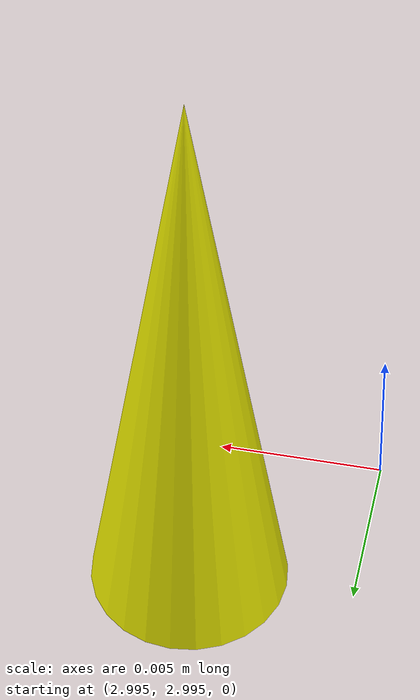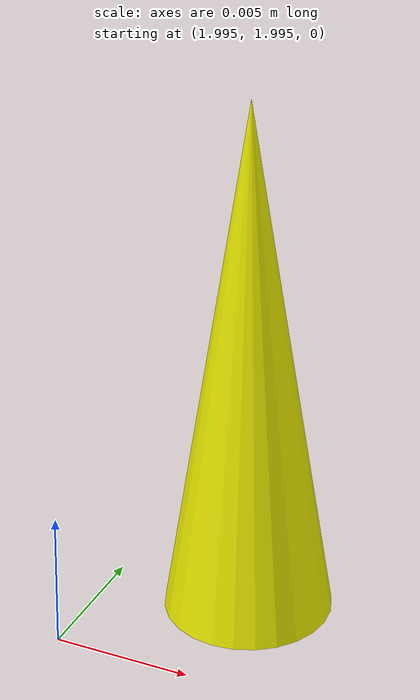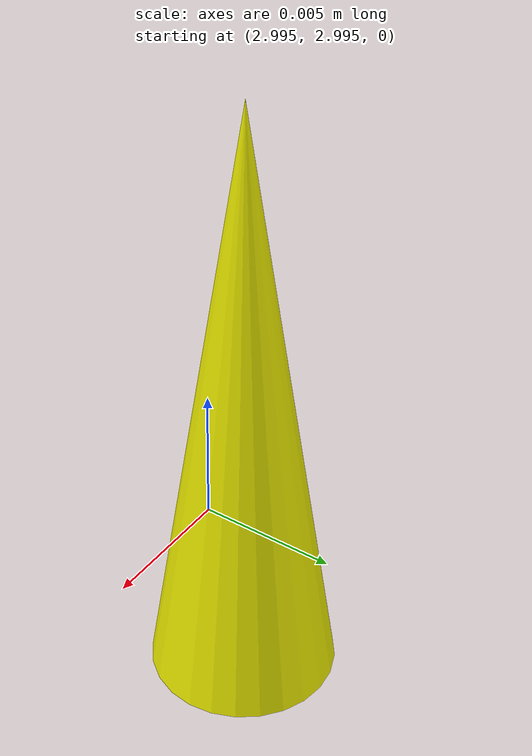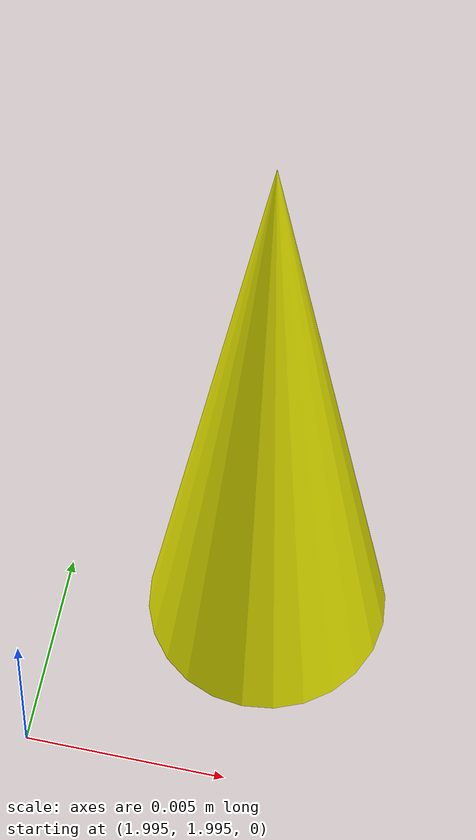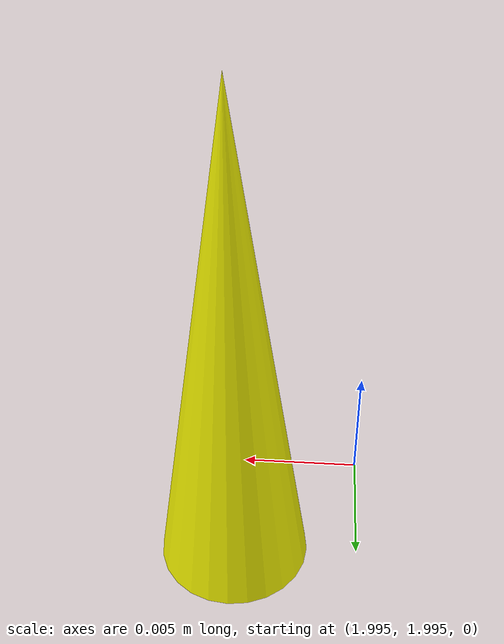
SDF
<?xml version="1.0"?>

<sdf version='1.6'>
	<world name='default'>
	<gravity>0 0 -9.8</gravity>
		<model name='cones'>
            <pose>3 3 0.0 0 0 0</pose>
			<link name='cone_0_link'>
				<collision name='cone_0_collision'>
				<geometry>
					<mesh>
					<uri>models/cone/meshes/cone.stl</uri>
					<scale>0.001 0.001 0.001</scale>
					</mesh>
				</geometry>
				</collision>
				<visual name='cone_0_visual'>
				<geometry>
					<mesh>
					<uri>models/cone/meshes/cone.stl</uri>
					<scale>0.001 0.001 0.001</scale>
					</mesh>
				</geometry>
				<material>
					<ambient>1 1 0 1</ambient>
					<diffuse>1 1 0 1</diffuse>
					<specular>1 1 0 1</specular>
				</material>
				</visual>
				<enable_wind>false</enable_wind>
			</link>
			<static>true</static>
      		<self_collide>false</self_collide>
			</model>
			<model name='cones_1'>
            <pose>2 2 0 0 0.0 0</pose>
			<link name='cone_1_link'>
				<collision name='cone_1_collision'>
				<geometry>
					<mesh>
					<uri>models/cone/meshes/cone.stl</uri>
					<scale>0.001 0.001 0.001</scale>
					</mesh>
				</geometry>
				</collision>
				<visual name='cone_1_visual'>
				<geometry>
					<mesh>
					<uri>models/cone/meshes/cone.stl</uri>
					<scale>0.001 0.001 0.001</scale>
					</mesh>
				</geometry>
				<material>
					<ambient>1 1 0 1</ambient>
					<diffuse>1 1 0 1</diffuse>
					<specular>1 1 0 1</specular>
				</material>
				</visual>
				<enable_wind>false</enable_wind>
			</link>
			<static>true</static>
      		<self_collide>true</self_collide>
	  </model>
	</world>
</sdf>
